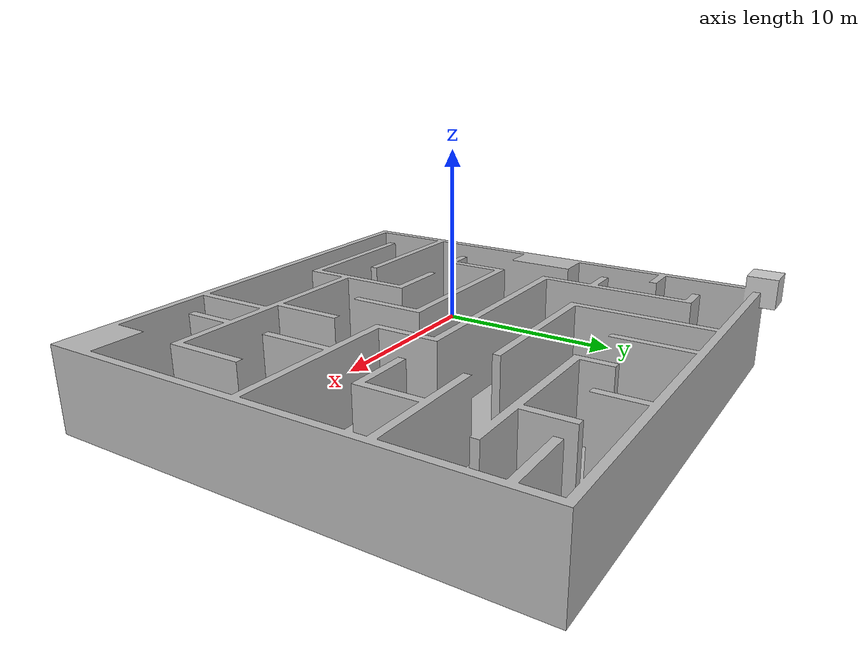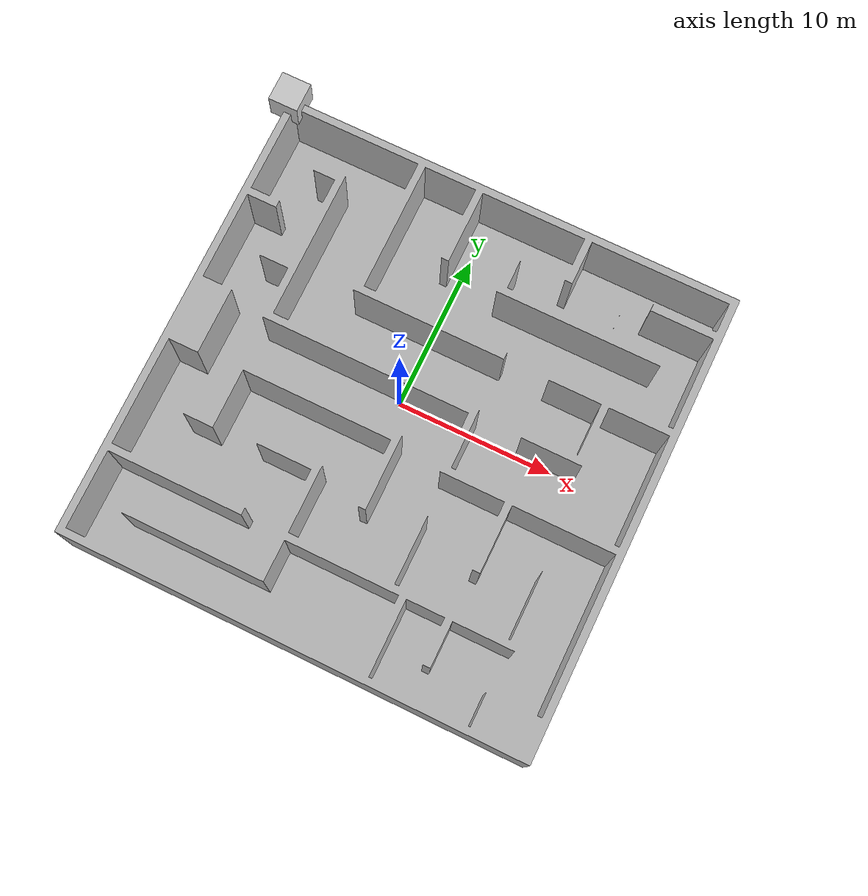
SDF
<?xml version='1.0'?>
<sdf version='1.5'>

  <model name='maze_pool'>
    <pose>0 0 0.1 0 0 0</pose>
    <self_collide> 0 </self_collide>
    <static> 1</static>

    <link name='pool'>
      <pose>-15 15 0.1 3.14 0 0</pose>
      <visual name='pool_visual'>
        <geometry>
            <mesh><uri>file://maze_pool/maze_pool.dae</uri></mesh>
        </geometry>
        <material>
          <script>
            <uri>file://Media/materials/scripts/sand.material</uri>
            <name>UUVSimulator/SandAndStones</name>
          </script>
          <emissive>
            0.2 0.2 0.2 1.0
          </emissive>
        </material>
      </visual>
      <collision name='pool_collision'>
        <geometry>
            <mesh><uri>file://maze_pool/maze_pool.dae</uri></mesh>
        </geometry>
      </collision>
    </link>

  </model>
</sdf>
